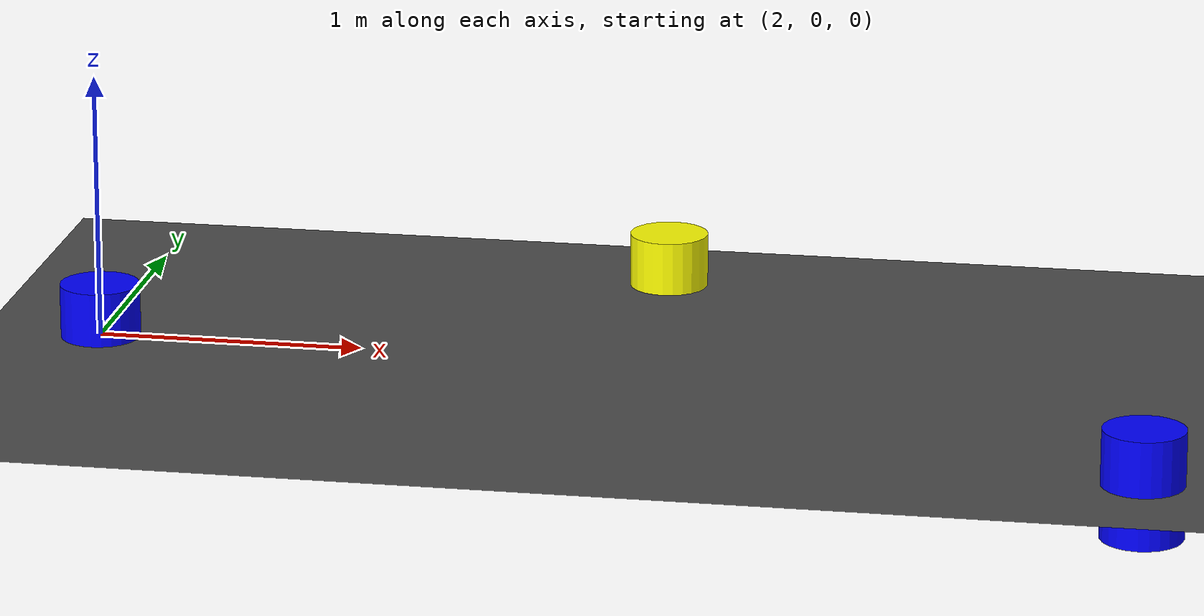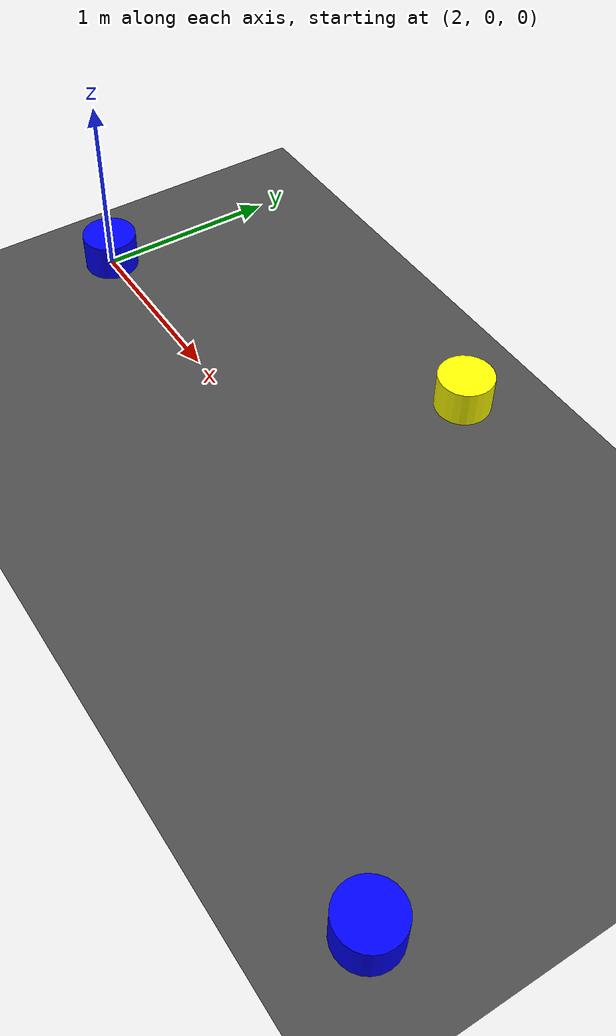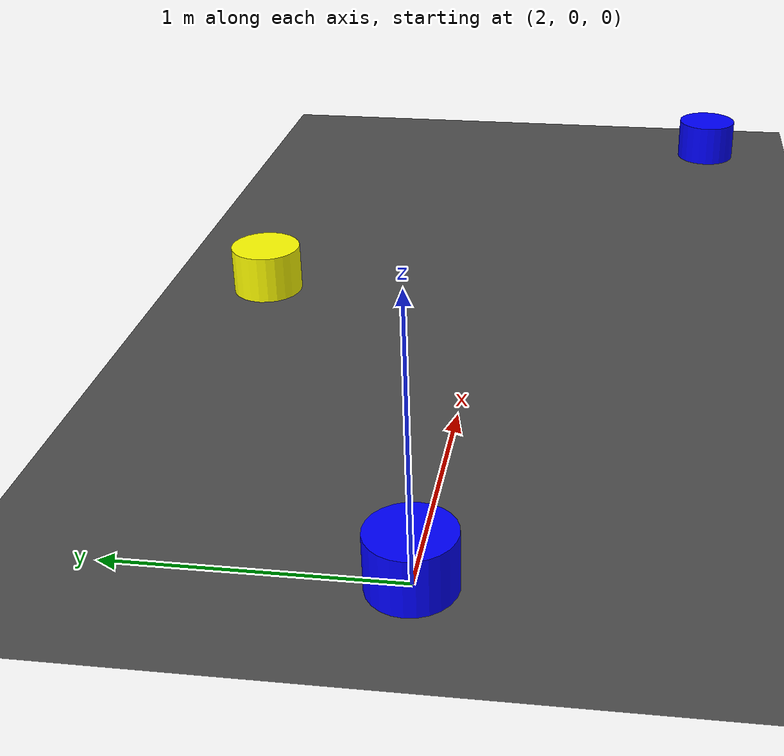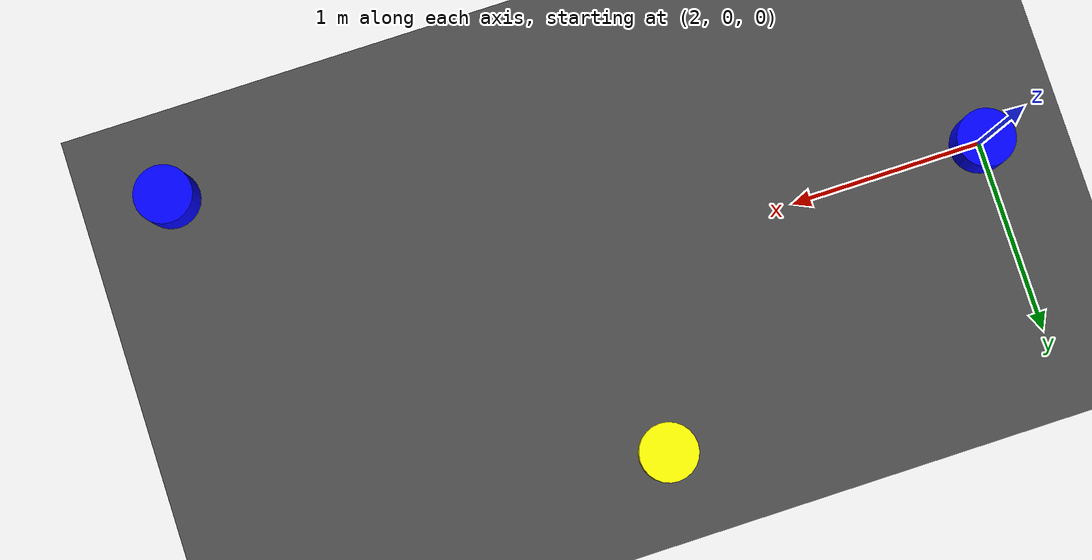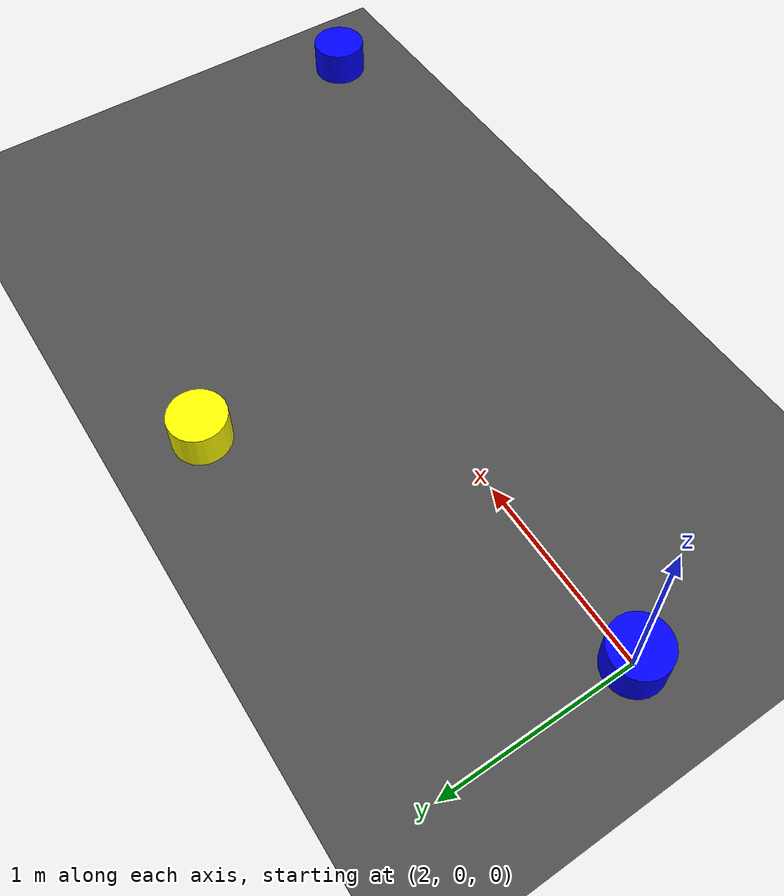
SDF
<?xml version="1.0" ?>
<sdf version="1.8">
  <world name="cones_test">

    <!-- כבידה -->
    <gravity>0 0 -9.81</gravity>

    <!-- קרקע פשוטה -->
    <model name="ground_plane">
      <static>true</static>
      <link name="ground_link">
        <collision name="collision">
          <geometry>
            <plane>
              <normal>0 0 1</normal>
              <size>50 50</size>
            </plane>
          </geometry>
        </collision>
        <visual name="visual">
          <geometry>
            <plane>
              <normal>0 0 1</normal>
              <size>50 50</size>
            </plane>
          </geometry>
          <material>
            <ambient>0.3 0.3 0.3 1</ambient>
            <diffuse>0.3 0.3 0.3 1</diffuse>
          </material>
        </visual>
      </link>
    </model>

    <!-- תאורה (שמש) -->
    <light name="sun" type="directional">
      <cast_shadows>true</cast_shadows>
      <pose>0 0 10 0 0 0</pose>
      <diffuse>1 1 1 1</diffuse>
      <specular>0.5 0.5 0.5 1</specular>
      <direction>-0.5 0.2 -1</direction>
    </light>

    <!-- קונוס 1 (כחול) -->
    <model name="blue_cone_1">
      <pose>2 0 0 0 0 0</pose>
      <link name="link">
        <inertial>
          <mass>0.5</mass>
          <inertia>
            <ixx>0.01</ixx>
            <iyy>0.01</iyy>
            <izz>0.01</izz>
          </inertia>
        </inertial>
        <collision name="collision">
          <geometry>
            <cylinder>
              <radius>0.15</radius>
              <length>0.4</length>
            </cylinder>
          </geometry>
        </collision>
        <visual name="visual">
          <geometry>
            <cylinder>
              <radius>0.15</radius>
              <length>0.4</length>
            </cylinder>
          </geometry>
          <material>
            <ambient>0 0 1 1</ambient>
            <diffuse>0 0 1 1</diffuse>
          </material>
        </visual>
      </link>
    </model>

    <!-- קונוס 2 (צהוב) -->
    <model name="yellow_cone_1">
      <pose>4 1 0 0 0 0</pose>
      <link name="link">
        <inertial>
          <mass>0.5</mass>
          <inertia>
            <ixx>0.01</ixx>
            <iyy>0.01</iyy>
            <izz>0.01</izz>
          </inertia>
        </inertial>
        <collision name="collision">
          <geometry>
            <cylinder>
              <radius>0.15</radius>
              <length>0.4</length>
            </cylinder>
          </geometry>
        </collision>
        <visual name="visual">
          <geometry>
            <cylinder>
              <radius>0.15</radius>
              <length>0.4</length>
            </cylinder>
          </geometry>
          <material>
            <ambient>1 1 0 1</ambient>
            <diffuse>1 1 0 1</diffuse>
          </material>
        </visual>
      </link>
    </model>

    <!-- קונוס 3 (כחול) -->
    <model name="blue_cone_2">
      <pose>6 -1 0 0 0 0</pose>
      <link name="link">
        <inertial>
          <mass>0.5</mass>
          <inertia>
            <ixx>0.01</ixx>
            <iyy>0.01</iyy>
            <izz>0.01</izz>
          </inertia>
        </inertial>
        <collision name="collision">
          <geometry>
            <cylinder>
              <radius>0.15</radius>
              <length>0.4</length>
            </cylinder>
          </geometry>
        </collision>
        <visual name="visual">
          <geometry>
            <cylinder>
              <radius>0.15</radius>
              <length>0.4</length>
            </cylinder>
          </geometry>
          <material>
            <ambient>0 0 1 1</ambient>
            <diffuse>0 0 1 1</diffuse>
          </material>
        </visual>
      </link>
    </model>

  </world>
</sdf>
